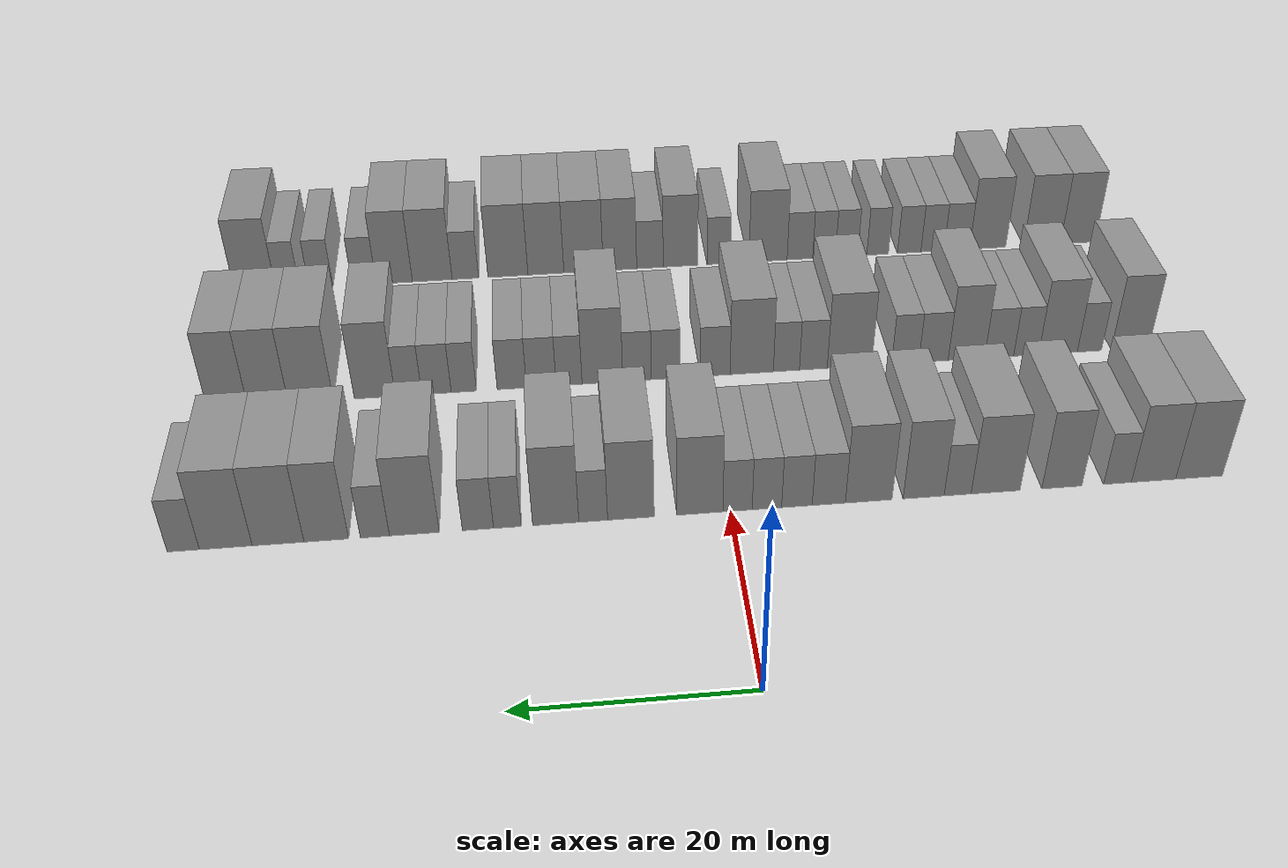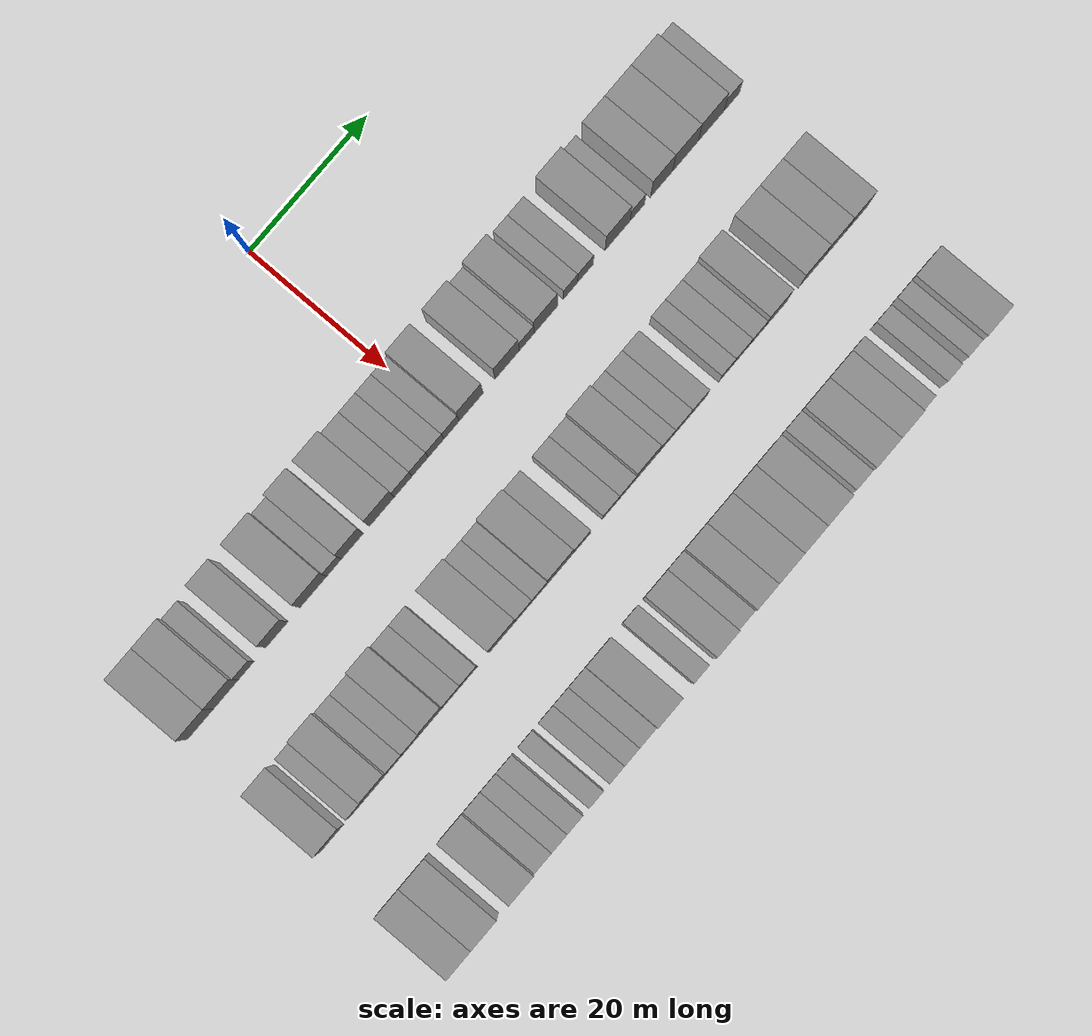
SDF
<sdf version="1.6">
 <world name="default">
  <model name="building_50">
   <static>1</static>
   <pose>25.0000 -42.7216 0 0.000000 0.000000 0.000000</pose>
   <link name="link">
    <pose>0 0 4.50 0 0 0</pose>
    <collision name="collision"><geometry><box><size>10.0000 4.3754 9.0000</size></box></geometry></collision>
    <visual name="visual">
     <cast_shadows>0</cast_shadows>
     <geometry><box><size>10.0000 4.3754 9.0000</size></box></geometry>
     <material>
      <script>
       <uri>model://grey_wall/materials/scripts</uri>
       <uri>model://grey_wall/materials/textures</uri>
       <name>vrc/grey_wall</name>
      </script>
     </material>
    </visual>
   </link>
  </model>
  <model name="building_51">
   <static>1</static>
   <pose>25.0000 -38.4709 0 0.000000 0.000000 0.000000</pose>
   <link name="link">
    <pose>0 0 4.50 0 0 0</pose>
    <collision name="collision"><geometry><box><size>10.0000 4.1260 9.0000</size></box></geometry></collision>
    <visual name="visual">
     <cast_shadows>0</cast_shadows>
     <geometry><box><size>10.0000 4.1260 9.0000</size></box></geometry>
     <material>
      <script>
       <uri>model://grey_wall/materials/scripts</uri>
       <uri>model://grey_wall/materials/textures</uri>
       <name>vrc/grey_wall</name>
      </script>
     </material>
    </visual>
   </link>
  </model>
  <model name="building_52">
   <static>1</static>
   <pose>25.0000 -35.1156 0 0.000000 0.000000 0.000000</pose>
   <link name="link">
    <pose>0 0 3.00 0 0 0</pose>
    <collision name="collision"><geometry><box><size>10.0000 2.5847 6.0000</size></box></geometry></collision>
    <visual name="visual">
     <cast_shadows>0</cast_shadows>
     <geometry><box><size>10.0000 2.5847 6.0000</size></box></geometry>
     <material>
      <script>
       <uri>model://grey_wall/materials/scripts</uri>
       <uri>model://grey_wall/materials/textures</uri>
       <name>vrc/grey_wall</name>
      </script>
     </material>
    </visual>
   </link>
  </model>
  <model name="building_53">
   <static>1</static>
   <pose>25.0000 -29.9718 0 0.000000 0.000000 0.000000</pose>
   <link name="link">
    <pose>0 0 4.50 0 0 0</pose>
    <collision name="collision"><geometry><box><size>10.0000 3.7028 9.0000</size></box></geometry></collision>
    <visual name="visual">
     <cast_shadows>0</cast_shadows>
     <geometry><box><size>10.0000 3.7028 9.0000</size></box></geometry>
     <material>
      <script>
       <uri>model://grey_wall/materials/scripts</uri>
       <uri>model://grey_wall/materials/textures</uri>
       <name>vrc/grey_wall</name>
      </script>
     </material>
    </visual>
   </link>
  </model>
  <model name="building_54">
   <static>1</static>
   <pose>25.0000 -23.8751 0 0.000000 0.000000 0.000000</pose>
   <link name="link">
    <pose>0 0 4.50 0 0 0</pose>
    <collision name="collision"><geometry><box><size>10.0000 4.4907 9.0000</size></box></geometry></collision>
    <visual name="visual">
     <cast_shadows>0</cast_shadows>
     <geometry><box><size>10.0000 4.4907 9.0000</size></box></geometry>
     <material>
      <script>
       <uri>model://grey_wall/materials/scripts</uri>
       <uri>model://grey_wall/materials/textures</uri>
       <name>vrc/grey_wall</name>
      </script>
     </material>
    </visual>
   </link>
  </model>
  <model name="building_55">
   <static>1</static>
   <pose>25.0000 -20.3982 0 0.000000 0.000000 0.000000</pose>
   <link name="link">
    <pose>0 0 3.00 0 0 0</pose>
    <collision name="collision"><geometry><box><size>10.0000 2.4630 6.0000</size></box></geometry></collision>
    <visual name="visual">
     <cast_shadows>0</cast_shadows>
     <geometry><box><size>10.0000 2.4630 6.0000</size></box></geometry>
     <material>
      <script>
       <uri>model://grey_wall/materials/scripts</uri>
       <uri>model://grey_wall/materials/textures</uri>
       <name>vrc/grey_wall</name>
      </script>
     </material>
    </visual>
   </link>
  </model>
  <model name="building_56">
   <static>1</static>
   <pose>25.0000 -17.3053 0 0.000000 0.000000 0.000000</pose>
   <link name="link">
    <pose>0 0 4.50 0 0 0</pose>
    <collision name="collision"><geometry><box><size>10.0000 3.7229 9.0000</size></box></geometry></collision>
    <visual name="visual">
     <cast_shadows>0</cast_shadows>
     <geometry><box><size>10.0000 3.7229 9.0000</size></box></geometry>
     <material>
      <script>
       <uri>model://grey_wall/materials/scripts</uri>
       <uri>model://grey_wall/materials/textures</uri>
       <name>vrc/grey_wall</name>
      </script>
     </material>
    </visual>
   </link>
  </model>
  <model name="building_57">
   <static>1</static>
   <pose>25.0000 -12.3346 0 0.000000 0.000000 0.000000</pose>
   <link name="link">
    <pose>0 0 4.50 0 0 0</pose>
    <collision name="collision"><geometry><box><size>10.0000 4.2184 9.0000</size></box></geometry></collision>
    <visual name="visual">
     <cast_shadows>0</cast_shadows>
     <geometry><box><size>10.0000 4.2184 9.0000</size></box></geometry>
     <material>
      <script>
       <uri>model://grey_wall/materials/scripts</uri>
       <uri>model://grey_wall/materials/textures</uri>
       <name>vrc/grey_wall</name>
      </script>
     </material>
    </visual>
   </link>
  </model>
  <model name="building_58">
   <static>1</static>
   <pose>25.0000 -8.7328 0 0.000000 0.000000 0.000000</pose>
   <link name="link">
    <pose>0 0 3.00 0 0 0</pose>
    <collision name="collision"><geometry><box><size>10.0000 2.9853 6.0000</size></box></geometry></collision>
    <visual name="visual">
     <cast_shadows>0</cast_shadows>
     <geometry><box><size>10.0000 2.9853 6.0000</size></box></geometry>
     <material>
      <script>
       <uri>model://grey_wall/materials/scripts</uri>
       <uri>model://grey_wall/materials/textures</uri>
       <name>vrc/grey_wall</name>
      </script>
     </material>
    </visual>
   </link>
  </model>
  <model name="building_59">
   <static>1</static>
   <pose>25.0000 -5.8702 0 0.000000 0.000000 0.000000</pose>
   <link name="link">
    <pose>0 0 3.00 0 0 0</pose>
    <collision name="collision"><geometry><box><size>10.0000 2.7400 6.0000</size></box></geometry></collision>
    <visual name="visual">
     <cast_shadows>0</cast_shadows>
     <geometry><box><size>10.0000 2.7400 6.0000</size></box></geometry>
     <material>
      <script>
       <uri>model://grey_wall/materials/scripts</uri>
       <uri>model://grey_wall/materials/textures</uri>
       <name>vrc/grey_wall</name>
      </script>
     </material>
    </visual>
   </link>
  </model>
  <model name="building_60">
   <static>1</static>
   <pose>25.0000 -3.1860 0 0.000000 0.000000 0.000000</pose>
   <link name="link">
    <pose>0 0 3.00 0 0 0</pose>
    <collision name="collision"><geometry><box><size>10.0000 2.6282 6.0000</size></box></geometry></collision>
    <visual name="visual">
     <cast_shadows>0</cast_shadows>
     <geometry><box><size>10.0000 2.6282 6.0000</size></box></geometry>
     <material>
      <script>
       <uri>model://grey_wall/materials/scripts</uri>
       <uri>model://grey_wall/materials/textures</uri>
       <name>vrc/grey_wall</name>
      </script>
     </material>
    </visual>
   </link>
  </model>
  <model name="building_61">
   <static>1</static>
   <pose>25.0000 -0.5667 0 0.000000 0.000000 0.000000</pose>
   <link name="link">
    <pose>0 0 3.00 0 0 0</pose>
    <collision name="collision"><geometry><box><size>10.0000 2.6105 6.0000</size></box></geometry></collision>
    <visual name="visual">
     <cast_shadows>0</cast_shadows>
     <geometry><box><size>10.0000 2.6105 6.0000</size></box></geometry>
     <material>
      <script>
       <uri>model://grey_wall/materials/scripts</uri>
       <uri>model://grey_wall/materials/textures</uri>
       <name>vrc/grey_wall</name>
      </script>
     </material>
    </visual>
   </link>
  </model>
  <model name="building_62">
   <static>1</static>
   <pose>25.0000 2.7764 0 0.000000 0.000000 0.000000</pose>
   <link name="link">
    <pose>0 0 4.50 0 0 0</pose>
    <collision name="collision"><geometry><box><size>10.0000 4.0758 9.0000</size></box></geometry></collision>
    <visual name="visual">
     <cast_shadows>0</cast_shadows>
     <geometry><box><size>10.0000 4.0758 9.0000</size></box></geometry>
     <material>
      <script>
       <uri>model://grey_wall/materials/scripts</uri>
       <uri>model://grey_wall/materials/textures</uri>
       <name>vrc/grey_wall</name>
      </script>
     </material>
    </visual>
   </link>
  </model>
  <model name="building_63">
   <static>1</static>
   <pose>25.0000 8.8655 0 0.000000 0.000000 0.000000</pose>
   <link name="link">
    <pose>0 0 4.50 0 0 0</pose>
    <collision name="collision"><geometry><box><size>10.0000 4.1023 9.0000</size></box></geometry></collision>
    <visual name="visual">
     <cast_shadows>0</cast_shadows>
     <geometry><box><size>10.0000 4.1023 9.0000</size></box></geometry>
     <material>
      <script>
       <uri>model://grey_wall/materials/scripts</uri>
       <uri>model://grey_wall/materials/textures</uri>
       <name>vrc/grey_wall</name>
      </script>
     </material>
    </visual>
   </link>
  </model>
  <model name="building_64">
   <static>1</static>
   <pose>25.0000 12.1791 0 0.000000 0.000000 0.000000</pose>
   <link name="link">
    <pose>0 0 3.00 0 0 0</pose>
    <collision name="collision"><geometry><box><size>10.0000 2.5248 6.0000</size></box></geometry></collision>
    <visual name="visual">
     <cast_shadows>0</cast_shadows>
     <geometry><box><size>10.0000 2.5248 6.0000</size></box></geometry>
     <material>
      <script>
       <uri>model://grey_wall/materials/scripts</uri>
       <uri>model://grey_wall/materials/textures</uri>
       <name>vrc/grey_wall</name>
      </script>
     </material>
    </visual>
   </link>
  </model>
  <model name="building_65">
   <static>1</static>
   <pose>25.0000 15.4568 0 0.000000 0.000000 0.000000</pose>
   <link name="link">
    <pose>0 0 4.50 0 0 0</pose>
    <collision name="collision"><geometry><box><size>10.0000 4.0306 9.0000</size></box></geometry></collision>
    <visual name="visual">
     <cast_shadows>0</cast_shadows>
     <geometry><box><size>10.0000 4.0306 9.0000</size></box></geometry>
     <material>
      <script>
       <uri>model://grey_wall/materials/scripts</uri>
       <uri>model://grey_wall/materials/textures</uri>
       <name>vrc/grey_wall</name>
      </script>
     </material>
    </visual>
   </link>
  </model>
  <model name="building_66">
   <static>1</static>
   <pose>25.0000 19.6749 0 0.000000 0.000000 0.000000</pose>
   <link name="link">
    <pose>0 0 3.00 0 0 0</pose>
    <collision name="collision"><geometry><box><size>10.0000 2.4056 6.0000</size></box></geometry></collision>
    <visual name="visual">
     <cast_shadows>0</cast_shadows>
     <geometry><box><size>10.0000 2.4056 6.0000</size></box></geometry>
     <material>
      <script>
       <uri>model://grey_wall/materials/scripts</uri>
       <uri>model://grey_wall/materials/textures</uri>
       <name>vrc/grey_wall</name>
      </script>
     </material>
    </visual>
   </link>
  </model>
  <model name="building_67">
   <static>1</static>
   <pose>25.0000 22.2227 0 0.000000 0.000000 0.000000</pose>
   <link name="link">
    <pose>0 0 3.00 0 0 0</pose>
    <collision name="collision"><geometry><box><size>10.0000 2.6901 6.0000</size></box></geometry></collision>
    <visual name="visual">
     <cast_shadows>0</cast_shadows>
     <geometry><box><size>10.0000 2.6901 6.0000</size></box></geometry>
     <material>
      <script>
       <uri>model://grey_wall/materials/scripts</uri>
       <uri>model://grey_wall/materials/textures</uri>
       <name>vrc/grey_wall</name>
      </script>
     </material>
    </visual>
   </link>
  </model>
  <model name="building_68">
   <static>1</static>
   <pose>25.0000 27.7084 0 0.000000 0.000000 0.000000</pose>
   <link name="link">
    <pose>0 0 4.50 0 0 0</pose>
    <collision name="collision"><geometry><box><size>10.0000 4.2813 9.0000</size></box></geometry></collision>
    <visual name="visual">
     <cast_shadows>0</cast_shadows>
     <geometry><box><size>10.0000 4.2813 9.0000</size></box></geometry>
     <material>
      <script>
       <uri>model://grey_wall/materials/scripts</uri>
       <uri>model://grey_wall/materials/textures</uri>
       <name>vrc/grey_wall</name>
      </script>
     </material>
    </visual>
   </link>
  </model>
  <model name="building_69">
   <static>1</static>
   <pose>25.0000 31.0957 0 0.000000 0.000000 0.000000</pose>
   <link name="link">
    <pose>0 0 3.00 0 0 0</pose>
    <collision name="collision"><geometry><box><size>10.0000 2.4934 6.0000</size></box></geometry></collision>
    <visual name="visual">
     <cast_shadows>0</cast_shadows>
     <geometry><box><size>10.0000 2.4934 6.0000</size></box></geometry>
     <material>
      <script>
       <uri>model://grey_wall/materials/scripts</uri>
       <uri>model://grey_wall/materials/textures</uri>
       <name>vrc/grey_wall</name>
      </script>
     </material>
    </visual>
   </link>
  </model>
  <model name="building_70">
   <static>1</static>
   <pose>25.0000 35.2474 0 0.000000 0.000000 0.000000</pose>
   <link name="link">
    <pose>0 0 4.50 0 0 0</pose>
    <collision name="collision"><geometry><box><size>10.0000 3.8100 9.0000</size></box></geometry></collision>
    <visual name="visual">
     <cast_shadows>0</cast_shadows>
     <geometry><box><size>10.0000 3.8100 9.0000</size></box></geometry>
     <material>
      <script>
       <uri>model://grey_wall/materials/scripts</uri>
       <uri>model://grey_wall/materials/textures</uri>
       <name>vrc/grey_wall</name>
      </script>
     </material>
    </visual>
   </link>
  </model>
  <model name="building_71">
   <static>1</static>
   <pose>25.0000 39.3459 0 0.000000 0.000000 0.000000</pose>
   <link name="link">
    <pose>0 0 4.50 0 0 0</pose>
    <collision name="collision"><geometry><box><size>10.0000 4.3869 9.0000</size></box></geometry></collision>
    <visual name="visual">
     <cast_shadows>0</cast_shadows>
     <geometry><box><size>10.0000 4.3869 9.0000</size></box></geometry>
     <material>
      <script>
       <uri>model://grey_wall/materials/scripts</uri>
       <uri>model://grey_wall/materials/textures</uri>
       <name>vrc/grey_wall</name>
      </script>
     </material>
    </visual>
   </link>
  </model>
  <model name="building_72">
   <static>1</static>
   <pose>25.0000 43.7689 0 0.000000 0.000000 0.000000</pose>
   <link name="link">
    <pose>0 0 4.50 0 0 0</pose>
    <collision name="collision"><geometry><box><size>10.0000 4.4592 9.0000</size></box></geometry></collision>
    <visual name="visual">
     <cast_shadows>0</cast_shadows>
     <geometry><box><size>10.0000 4.4592 9.0000</size></box></geometry>
     <material>
      <script>
       <uri>model://grey_wall/materials/scripts</uri>
       <uri>model://grey_wall/materials/textures</uri>
       <name>vrc/grey_wall</name>
      </script>
     </material>
    </visual>
   </link>
  </model>
  <model name="building_73">
   <static>1</static>
   <pose>25.0000 47.3515 0 0.000000 0.000000 0.000000</pose>
   <link name="link">
    <pose>0 0 3.00 0 0 0</pose>
    <collision name="collision"><geometry><box><size>10.0000 2.7061 6.0000</size></box></geometry></collision>
    <visual name="visual">
     <cast_shadows>0</cast_shadows>
     <geometry><box><size>10.0000 2.7061 6.0000</size></box></geometry>
     <material>
      <script>
       <uri>model://grey_wall/materials/scripts</uri>
       <uri>model://grey_wall/materials/textures</uri>
       <name>vrc/grey_wall</name>
      </script>
     </material>
    </visual>
   </link>
  </model>
  <model name="building_173">
   <static>1</static>
   <pose>44.0000 -42.8309 0 0.000000 0.000000 0.000000</pose>
   <link name="link">
    <pose>0 0 4.50 0 0 0</pose>
    <collision name="collision"><geometry><box><size>10.0000 3.9097 9.0000</size></box></geometry></collision>
    <visual name="visual">
     <cast_shadows>0</cast_shadows>
     <geometry><box><size>10.0000 3.9097 9.0000</size></box></geometry>
     <material>
      <script>
       <uri>model://grey_wall/materials/scripts</uri>
       <uri>model://grey_wall/materials/textures</uri>
       <name>vrc/grey_wall</name>
      </script>
     </material>
    </visual>
   </link>
  </model>
  <model name="building_174">
   <static>1</static>
   <pose>44.0000 -38.6258 0 0.000000 0.000000 0.000000</pose>
   <link name="link">
    <pose>0 0 3.00 0 0 0</pose>
    <collision name="collision"><geometry><box><size>10.0000 2.5004 6.0000</size></box></geometry></collision>
    <visual name="visual">
     <cast_shadows>0</cast_shadows>
     <geometry><box><size>10.0000 2.5004 6.0000</size></box></geometry>
     <material>
      <script>
       <uri>model://grey_wall/materials/scripts</uri>
       <uri>model://grey_wall/materials/textures</uri>
       <name>vrc/grey_wall</name>
      </script>
     </material>
    </visual>
   </link>
  </model>
  <model name="building_175">
   <static>1</static>
   <pose>44.0000 -35.3883 0 0.000000 0.000000 0.000000</pose>
   <link name="link">
    <pose>0 0 4.50 0 0 0</pose>
    <collision name="collision"><geometry><box><size>10.0000 3.9746 9.0000</size></box></geometry></collision>
    <visual name="visual">
     <cast_shadows>0</cast_shadows>
     <geometry><box><size>10.0000 3.9746 9.0000</size></box></geometry>
     <material>
      <script>
       <uri>model://grey_wall/materials/scripts</uri>
       <uri>model://grey_wall/materials/textures</uri>
       <name>vrc/grey_wall</name>
      </script>
     </material>
    </visual>
   </link>
  </model>
  <model name="building_176">
   <static>1</static>
   <pose>44.0000 -32.1208 0 0.000000 0.000000 0.000000</pose>
   <link name="link">
    <pose>0 0 3.00 0 0 0</pose>
    <collision name="collision"><geometry><box><size>10.0000 2.5604 6.0000</size></box></geometry></collision>
    <visual name="visual">
     <cast_shadows>0</cast_shadows>
     <geometry><box><size>10.0000 2.5604 6.0000</size></box></geometry>
     <material>
      <script>
       <uri>model://grey_wall/materials/scripts</uri>
       <uri>model://grey_wall/materials/textures</uri>
       <name>vrc/grey_wall</name>
      </script>
     </material>
    </visual>
   </link>
  </model>
  <model name="building_177">
   <static>1</static>
   <pose>44.0000 -29.3573 0 0.000000 0.000000 0.000000</pose>
   <link name="link">
    <pose>0 0 3.00 0 0 0</pose>
    <collision name="collision"><geometry><box><size>10.0000 2.9667 6.0000</size></box></geometry></collision>
    <visual name="visual">
     <cast_shadows>0</cast_shadows>
     <geometry><box><size>10.0000 2.9667 6.0000</size></box></geometry>
     <material>
      <script>
       <uri>model://grey_wall/materials/scripts</uri>
       <uri>model://grey_wall/materials/textures</uri>
       <name>vrc/grey_wall</name>
      </script>
     </material>
    </visual>
   </link>
  </model>
  <model name="building_178">
   <static>1</static>
   <pose>44.0000 -26.0195 0 0.000000 0.000000 0.000000</pose>
   <link name="link">
    <pose>0 0 4.50 0 0 0</pose>
    <collision name="collision"><geometry><box><size>10.0000 3.7088 9.0000</size></box></geometry></collision>
    <visual name="visual">
     <cast_shadows>0</cast_shadows>
     <geometry><box><size>10.0000 3.7088 9.0000</size></box></geometry>
     <material>
      <script>
       <uri>model://grey_wall/materials/scripts</uri>
       <uri>model://grey_wall/materials/textures</uri>
       <name>vrc/grey_wall</name>
      </script>
     </material>
    </visual>
   </link>
  </model>
  <model name="building_179">
   <static>1</static>
   <pose>44.0000 -22.6777 0 0.000000 0.000000 0.000000</pose>
   <link name="link">
    <pose>0 0 3.00 0 0 0</pose>
    <collision name="collision"><geometry><box><size>10.0000 2.9748 6.0000</size></box></geometry></collision>
    <visual name="visual">
     <cast_shadows>0</cast_shadows>
     <geometry><box><size>10.0000 2.9748 6.0000</size></box></geometry>
     <material>
      <script>
       <uri>model://grey_wall/materials/scripts</uri>
       <uri>model://grey_wall/materials/textures</uri>
       <name>vrc/grey_wall</name>
      </script>
     </material>
    </visual>
   </link>
  </model>
  <model name="building_180">
   <static>1</static>
   <pose>44.0000 -19.8198 0 0.000000 0.000000 0.000000</pose>
   <link name="link">
    <pose>0 0 3.00 0 0 0</pose>
    <collision name="collision"><geometry><box><size>10.0000 2.7412 6.0000</size></box></geometry></collision>
    <visual name="visual">
     <cast_shadows>0</cast_shadows>
     <geometry><box><size>10.0000 2.7412 6.0000</size></box></geometry>
     <material>
      <script>
       <uri>model://grey_wall/materials/scripts</uri>
       <uri>model://grey_wall/materials/textures</uri>
       <name>vrc/grey_wall</name>
      </script>
     </material>
    </visual>
   </link>
  </model>
  <model name="building_181">
   <static>1</static>
   <pose>44.0000 -14.2108 0 0.000000 0.000000 0.000000</pose>
   <link name="link">
    <pose>0 0 4.50 0 0 0</pose>
    <collision name="collision"><geometry><box><size>10.0000 4.4768 9.0000</size></box></geometry></collision>
    <visual name="visual">
     <cast_shadows>0</cast_shadows>
     <geometry><box><size>10.0000 4.4768 9.0000</size></box></geometry>
     <material>
      <script>
       <uri>model://grey_wall/materials/scripts</uri>
       <uri>model://grey_wall/materials/textures</uri>
       <name>vrc/grey_wall</name>
      </script>
     </material>
    </visual>
   </link>
  </model>
  <model name="building_182">
   <static>1</static>
   <pose>44.0000 -10.5837 0 0.000000 0.000000 0.000000</pose>
   <link name="link">
    <pose>0 0 3.00 0 0 0</pose>
    <collision name="collision"><geometry><box><size>10.0000 2.7774 6.0000</size></box></geometry></collision>
    <visual name="visual">
     <cast_shadows>0</cast_shadows>
     <geometry><box><size>10.0000 2.7774 6.0000</size></box></geometry>
     <material>
      <script>
       <uri>model://grey_wall/materials/scripts</uri>
       <uri>model://grey_wall/materials/textures</uri>
       <name>vrc/grey_wall</name>
      </script>
     </material>
    </visual>
   </link>
  </model>
  <model name="building_183">
   <static>1</static>
   <pose>44.0000 -7.8961 0 0.000000 0.000000 0.000000</pose>
   <link name="link">
    <pose>0 0 3.00 0 0 0</pose>
    <collision name="collision"><geometry><box><size>10.0000 2.5979 6.0000</size></box></geometry></collision>
    <visual name="visual">
     <cast_shadows>0</cast_shadows>
     <geometry><box><size>10.0000 2.5979 6.0000</size></box></geometry>
     <material>
      <script>
       <uri>model://grey_wall/materials/scripts</uri>
       <uri>model://grey_wall/materials/textures</uri>
       <name>vrc/grey_wall</name>
      </script>
     </material>
    </visual>
   </link>
  </model>
  <model name="building_184">
   <static>1</static>
   <pose>44.0000 -4.4448 0 0.000000 0.000000 0.000000</pose>
   <link name="link">
    <pose>0 0 4.50 0 0 0</pose>
    <collision name="collision"><geometry><box><size>10.0000 4.3047 9.0000</size></box></geometry></collision>
    <visual name="visual">
     <cast_shadows>0</cast_shadows>
     <geometry><box><size>10.0000 4.3047 9.0000</size></box></geometry>
     <material>
      <script>
       <uri>model://grey_wall/materials/scripts</uri>
       <uri>model://grey_wall/materials/textures</uri>
       <name>vrc/grey_wall</name>
      </script>
     </material>
    </visual>
   </link>
  </model>
  <model name="building_185">
   <static>1</static>
   <pose>44.0000 -0.8266 0 0.000000 0.000000 0.000000</pose>
   <link name="link">
    <pose>0 0 3.00 0 0 0</pose>
    <collision name="collision"><geometry><box><size>10.0000 2.9317 6.0000</size></box></geometry></collision>
    <visual name="visual">
     <cast_shadows>0</cast_shadows>
     <geometry><box><size>10.0000 2.9317 6.0000</size></box></geometry>
     <material>
      <script>
       <uri>model://grey_wall/materials/scripts</uri>
       <uri>model://grey_wall/materials/textures</uri>
       <name>vrc/grey_wall</name>
      </script>
     </material>
    </visual>
   </link>
  </model>
  <model name="building_186">
   <static>1</static>
   <pose>44.0000 4.0510 0 0.000000 0.000000 0.000000</pose>
   <link name="link">
    <pose>0 0 3.00 0 0 0</pose>
    <collision name="collision"><geometry><box><size>10.0000 2.8235 6.0000</size></box></geometry></collision>
    <visual name="visual">
     <cast_shadows>0</cast_shadows>
     <geometry><box><size>10.0000 2.8235 6.0000</size></box></geometry>
     <material>
      <script>
       <uri>model://grey_wall/materials/scripts</uri>
       <uri>model://grey_wall/materials/textures</uri>
       <name>vrc/grey_wall</name>
      </script>
     </material>
    </visual>
   </link>
  </model>
  <model name="building_187">
   <static>1</static>
   <pose>44.0000 6.8663 0 0.000000 0.000000 0.000000</pose>
   <link name="link">
    <pose>0 0 3.00 0 0 0</pose>
    <collision name="collision"><geometry><box><size>10.0000 2.8071 6.0000</size></box></geometry></collision>
    <visual name="visual">
     <cast_shadows>0</cast_shadows>
     <geometry><box><size>10.0000 2.8071 6.0000</size></box></geometry>
     <material>
      <script>
       <uri>model://grey_wall/materials/scripts</uri>
       <uri>model://grey_wall/materials/textures</uri>
       <name>vrc/grey_wall</name>
      </script>
     </material>
    </visual>
   </link>
  </model>
  <model name="building_188">
   <static>1</static>
   <pose>44.0000 10.2616 0 0.000000 0.000000 0.000000</pose>
   <link name="link">
    <pose>0 0 4.50 0 0 0</pose>
    <collision name="collision"><geometry><box><size>10.0000 3.9836 9.0000</size></box></geometry></collision>
    <visual name="visual">
     <cast_shadows>0</cast_shadows>
     <geometry><box><size>10.0000 3.9836 9.0000</size></box></geometry>
     <material>
      <script>
       <uri>model://grey_wall/materials/scripts</uri>
       <uri>model://grey_wall/materials/textures</uri>
       <name>vrc/grey_wall</name>
      </script>
     </material>
    </visual>
   </link>
  </model>
  <model name="building_189">
   <static>1</static>
   <pose>44.0000 13.5170 0 0.000000 0.000000 0.000000</pose>
   <link name="link">
    <pose>0 0 3.00 0 0 0</pose>
    <collision name="collision"><geometry><box><size>10.0000 2.5271 6.0000</size></box></geometry></collision>
    <visual name="visual">
     <cast_shadows>0</cast_shadows>
     <geometry><box><size>10.0000 2.5271 6.0000</size></box></geometry>
     <material>
      <script>
       <uri>model://grey_wall/materials/scripts</uri>
       <uri>model://grey_wall/materials/textures</uri>
       <name>vrc/grey_wall</name>
      </script>
     </material>
    </visual>
   </link>
  </model>
  <model name="building_190">
   <static>1</static>
   <pose>44.0000 16.2181 0 0.000000 0.000000 0.000000</pose>
   <link name="link">
    <pose>0 0 3.00 0 0 0</pose>
    <collision name="collision"><geometry><box><size>10.0000 2.8750 6.0000</size></box></geometry></collision>
    <visual name="visual">
     <cast_shadows>0</cast_shadows>
     <geometry><box><size>10.0000 2.8750 6.0000</size></box></geometry>
     <material>
      <script>
       <uri>model://grey_wall/materials/scripts</uri>
       <uri>model://grey_wall/materials/textures</uri>
       <name>vrc/grey_wall</name>
      </script>
     </material>
    </visual>
   </link>
  </model>
  <model name="building_191">
   <static>1</static>
   <pose>44.0000 19.0745 0 0.000000 0.000000 0.000000</pose>
   <link name="link">
    <pose>0 0 3.00 0 0 0</pose>
    <collision name="collision"><geometry><box><size>10.0000 2.8378 6.0000</size></box></geometry></collision>
    <visual name="visual">
     <cast_shadows>0</cast_shadows>
     <geometry><box><size>10.0000 2.8378 6.0000</size></box></geometry>
     <material>
      <script>
       <uri>model://grey_wall/materials/scripts</uri>
       <uri>model://grey_wall/materials/textures</uri>
       <name>vrc/grey_wall</name>
      </script>
     </material>
    </visual>
   </link>
  </model>
  <model name="building_192">
   <static>1</static>
   <pose>44.0000 23.7093 0 0.000000 0.000000 0.000000</pose>
   <link name="link">
    <pose>0 0 3.00 0 0 0</pose>
    <collision name="collision"><geometry><box><size>10.0000 2.4318 6.0000</size></box></geometry></collision>
    <visual name="visual">
     <cast_shadows>0</cast_shadows>
     <geometry><box><size>10.0000 2.4318 6.0000</size></box></geometry>
     <material>
      <script>
       <uri>model://grey_wall/materials/scripts</uri>
       <uri>model://grey_wall/materials/textures</uri>
       <name>vrc/grey_wall</name>
      </script>
     </material>
    </visual>
   </link>
  </model>
  <model name="building_193">
   <static>1</static>
   <pose>44.0000 26.3381 0 0.000000 0.000000 0.000000</pose>
   <link name="link">
    <pose>0 0 3.00 0 0 0</pose>
    <collision name="collision"><geometry><box><size>10.0000 2.8258 6.0000</size></box></geometry></collision>
    <visual name="visual">
     <cast_shadows>0</cast_shadows>
     <geometry><box><size>10.0000 2.8258 6.0000</size></box></geometry>
     <material>
      <script>
       <uri>model://grey_wall/materials/scripts</uri>
       <uri>model://grey_wall/materials/textures</uri>
       <name>vrc/grey_wall</name>
      </script>
     </material>
    </visual>
   </link>
  </model>
  <model name="building_194">
   <static>1</static>
   <pose>44.0000 29.0210 0 0.000000 0.000000 0.000000</pose>
   <link name="link">
    <pose>0 0 3.00 0 0 0</pose>
    <collision name="collision"><geometry><box><size>10.0000 2.5401 6.0000</size></box></geometry></collision>
    <visual name="visual">
     <cast_shadows>0</cast_shadows>
     <geometry><box><size>10.0000 2.5401 6.0000</size></box></geometry>
     <material>
      <script>
       <uri>model://grey_wall/materials/scripts</uri>
       <uri>model://grey_wall/materials/textures</uri>
       <name>vrc/grey_wall</name>
      </script>
     </material>
    </visual>
   </link>
  </model>
  <model name="building_195">
   <static>1</static>
   <pose>44.0000 32.2441 0 0.000000 0.000000 0.000000</pose>
   <link name="link">
    <pose>0 0 4.50 0 0 0</pose>
    <collision name="collision"><geometry><box><size>10.0000 3.9061 9.0000</size></box></geometry></collision>
    <visual name="visual">
     <cast_shadows>0</cast_shadows>
     <geometry><box><size>10.0000 3.9061 9.0000</size></box></geometry>
     <material>
      <script>
       <uri>model://grey_wall/materials/scripts</uri>
       <uri>model://grey_wall/materials/textures</uri>
       <name>vrc/grey_wall</name>
      </script>
     </material>
    </visual>
   </link>
  </model>
  <model name="building_196">
   <static>1</static>
   <pose>44.0000 38.3375 0 0.000000 0.000000 0.000000</pose>
   <link name="link">
    <pose>0 0 4.50 0 0 0</pose>
    <collision name="collision"><geometry><box><size>10.0000 4.2806 9.0000</size></box></geometry></collision>
    <visual name="visual">
     <cast_shadows>0</cast_shadows>
     <geometry><box><size>10.0000 4.2806 9.0000</size></box></geometry>
     <material>
      <script>
       <uri>model://grey_wall/materials/scripts</uri>
       <uri>model://grey_wall/materials/textures</uri>
       <name>vrc/grey_wall</name>
      </script>
     </material>
    </visual>
   </link>
  </model>
  <model name="building_197">
   <static>1</static>
   <pose>44.0000 42.4011 0 0.000000 0.000000 0.000000</pose>
   <link name="link">
    <pose>0 0 4.50 0 0 0</pose>
    <collision name="collision"><geometry><box><size>10.0000 3.8466 9.0000</size></box></geometry></collision>
    <visual name="visual">
     <cast_shadows>0</cast_shadows>
     <geometry><box><size>10.0000 3.8466 9.0000</size></box></geometry>
     <material>
      <script>
       <uri>model://grey_wall/materials/scripts</uri>
       <uri>model://grey_wall/materials/textures</uri>
       <name>vrc/grey_wall</name>
      </script>
     </material>
    </visual>
   </link>
  </model>
  <model name="building_198">
   <static>1</static>
   <pose>44.0000 46.2321 0 0.000000 0.000000 0.000000</pose>
   <link name="link">
    <pose>0 0 4.50 0 0 0</pose>
    <collision name="collision"><geometry><box><size>10.0000 3.8154 9.0000</size></box></geometry></collision>
    <visual name="visual">
     <cast_shadows>0</cast_shadows>
     <geometry><box><size>10.0000 3.8154 9.0000</size></box></geometry>
     <material>
      <script>
       <uri>model://grey_wall/materials/scripts</uri>
       <uri>model://grey_wall/materials/textures</uri>
       <name>vrc/grey_wall</name>
      </script>
     </material>
    </visual>
   </link>
  </model>
  <model name="building_301">
   <static>1</static>
   <pose>63.0000 -43.4408 0 0.000000 0.000000 0.000000</pose>
   <link name="link">
    <pose>0 0 4.50 0 0 0</pose>
    <collision name="collision"><geometry><box><size>10.0000 3.9547 9.0000</size></box></geometry></collision>
    <visual name="visual">
     <cast_shadows>0</cast_shadows>
     <geometry><box><size>10.0000 3.9547 9.0000</size></box></geometry>
     <material>
      <script>
       <uri>model://grey_wall/materials/scripts</uri>
       <uri>model://grey_wall/materials/textures</uri>
       <name>vrc/grey_wall</name>
      </script>
     </material>
    </visual>
   </link>
  </model>
  <model name="building_302">
   <static>1</static>
   <pose>63.0000 -39.3675 0 0.000000 0.000000 0.000000</pose>
   <link name="link">
    <pose>0 0 4.50 0 0 0</pose>
    <collision name="collision"><geometry><box><size>10.0000 4.1920 9.0000</size></box></geometry></collision>
    <visual name="visual">
     <cast_shadows>0</cast_shadows>
     <geometry><box><size>10.0000 4.1920 9.0000</size></box></geometry>
     <material>
      <script>
       <uri>model://grey_wall/materials/scripts</uri>
       <uri>model://grey_wall/materials/textures</uri>
       <name>vrc/grey_wall</name>
      </script>
     </material>
    </visual>
   </link>
  </model>
  <model name="building_303">
   <static>1</static>
   <pose>63.0000 -33.2353 0 0.000000 0.000000 0.000000</pose>
   <link name="link">
    <pose>0 0 4.50 0 0 0</pose>
    <collision name="collision"><geometry><box><size>10.0000 4.0724 9.0000</size></box></geometry></collision>
    <visual name="visual">
     <cast_shadows>0</cast_shadows>
     <geometry><box><size>10.0000 4.0724 9.0000</size></box></geometry>
     <material>
      <script>
       <uri>model://grey_wall/materials/scripts</uri>
       <uri>model://grey_wall/materials/textures</uri>
       <name>vrc/grey_wall</name>
      </script>
     </material>
    </visual>
   </link>
  </model>
  <model name="building_304">
   <static>1</static>
   <pose>63.0000 -29.7680 0 0.000000 0.000000 0.000000</pose>
   <link name="link">
    <pose>0 0 3.00 0 0 0</pose>
    <collision name="collision"><geometry><box><size>10.0000 2.8621 6.0000</size></box></geometry></collision>
    <visual name="visual">
     <cast_shadows>0</cast_shadows>
     <geometry><box><size>10.0000 2.8621 6.0000</size></box></geometry>
     <material>
      <script>
       <uri>model://grey_wall/materials/scripts</uri>
       <uri>model://grey_wall/materials/textures</uri>
       <name>vrc/grey_wall</name>
      </script>
     </material>
    </visual>
   </link>
  </model>
  <model name="building_305">
   <static>1</static>
   <pose>63.0000 -27.0472 0 0.000000 0.000000 0.000000</pose>
   <link name="link">
    <pose>0 0 3.00 0 0 0</pose>
    <collision name="collision"><geometry><box><size>10.0000 2.5796 6.0000</size></box></geometry></collision>
    <visual name="visual">
     <cast_shadows>0</cast_shadows>
     <geometry><box><size>10.0000 2.5796 6.0000</size></box></geometry>
     <material>
      <script>
       <uri>model://grey_wall/materials/scripts</uri>
       <uri>model://grey_wall/materials/textures</uri>
       <name>vrc/grey_wall</name>
      </script>
     </material>
    </visual>
   </link>
  </model>
  <model name="building_306">
   <static>1</static>
   <pose>63.0000 -24.4523 0 0.000000 0.000000 0.000000</pose>
   <link name="link">
    <pose>0 0 3.00 0 0 0</pose>
    <collision name="collision"><geometry><box><size>10.0000 2.6100 6.0000</size></box></geometry></collision>
    <visual name="visual">
     <cast_shadows>0</cast_shadows>
     <geometry><box><size>10.0000 2.6100 6.0000</size></box></geometry>
     <material>
      <script>
       <uri>model://grey_wall/materials/scripts</uri>
       <uri>model://grey_wall/materials/textures</uri>
       <name>vrc/grey_wall</name>
      </script>
     </material>
    </visual>
   </link>
  </model>
  <model name="building_307">
   <static>1</static>
   <pose>63.0000 -20.9467 0 0.000000 0.000000 0.000000</pose>
   <link name="link">
    <pose>0 0 3.00 0 0 0</pose>
    <collision name="collision"><geometry><box><size>10.0000 2.4012 6.0000</size></box></geometry></collision>
    <visual name="visual">
     <cast_shadows>0</cast_shadows>
     <geometry><box><size>10.0000 2.4012 6.0000</size></box></geometry>
     <material>
      <script>
       <uri>model://grey_wall/materials/scripts</uri>
       <uri>model://grey_wall/materials/textures</uri>
       <name>vrc/grey_wall</name>
      </script>
     </material>
    </visual>
   </link>
  </model>
  <model name="building_308">
   <static>1</static>
   <pose>63.0000 -17.5079 0 0.000000 0.000000 0.000000</pose>
   <link name="link">
    <pose>0 0 3.00 0 0 0</pose>
    <collision name="collision"><geometry><box><size>10.0000 2.4765 6.0000</size></box></geometry></collision>
    <visual name="visual">
     <cast_shadows>0</cast_shadows>
     <geometry><box><size>10.0000 2.4765 6.0000</size></box></geometry>
     <material>
      <script>
       <uri>model://grey_wall/materials/scripts</uri>
       <uri>model://grey_wall/materials/textures</uri>
       <name>vrc/grey_wall</name>
      </script>
     </material>
    </visual>
   </link>
  </model>
  <model name="building_309">
   <static>1</static>
   <pose>63.0000 -15.0133 0 0.000000 0.000000 0.000000</pose>
   <link name="link">
    <pose>0 0 3.00 0 0 0</pose>
    <collision name="collision"><geometry><box><size>10.0000 2.5126 6.0000</size></box></geometry></collision>
    <visual name="visual">
     <cast_shadows>0</cast_shadows>
     <geometry><box><size>10.0000 2.5126 6.0000</size></box></geometry>
     <material>
      <script>
       <uri>model://grey_wall/materials/scripts</uri>
       <uri>model://grey_wall/materials/textures</uri>
       <name>vrc/grey_wall</name>
      </script>
     </material>
    </visual>
   </link>
  </model>
  <model name="building_310">
   <static>1</static>
   <pose>63.0000 -12.3483 0 0.000000 0.000000 0.000000</pose>
   <link name="link">
    <pose>0 0 3.00 0 0 0</pose>
    <collision name="collision"><geometry><box><size>10.0000 2.8175 6.0000</size></box></geometry></collision>
    <visual name="visual">
     <cast_shadows>0</cast_shadows>
     <geometry><box><size>10.0000 2.8175 6.0000</size></box></geometry>
     <material>
      <script>
       <uri>model://grey_wall/materials/scripts</uri>
       <uri>model://grey_wall/materials/textures</uri>
       <name>vrc/grey_wall</name>
      </script>
     </material>
    </visual>
   </link>
  </model>
  <model name="building_311">
   <static>1</static>
   <pose>63.0000 -8.8454 0 0.000000 0.000000 0.000000</pose>
   <link name="link">
    <pose>0 0 4.50 0 0 0</pose>
    <collision name="collision"><geometry><box><size>10.0000 4.1883 9.0000</size></box></geometry></collision>
    <visual name="visual">
     <cast_shadows>0</cast_shadows>
     <geometry><box><size>10.0000 4.1883 9.0000</size></box></geometry>
     <material>
      <script>
       <uri>model://grey_wall/materials/scripts</uri>
       <uri>model://grey_wall/materials/textures</uri>
       <name>vrc/grey_wall</name>
      </script>
     </material>
    </visual>
   </link>
  </model>
  <model name="building_312">
   <static>1</static>
   <pose>63.0000 -3.4644 0 0.000000 0.000000 0.000000</pose>
   <link name="link">
    <pose>0 0 3.00 0 0 0</pose>
    <collision name="collision"><geometry><box><size>10.0000 2.5737 6.0000</size></box></geometry></collision>
    <visual name="visual">
     <cast_shadows>0</cast_shadows>
     <geometry><box><size>10.0000 2.5737 6.0000</size></box></geometry>
     <material>
      <script>
       <uri>model://grey_wall/materials/scripts</uri>
       <uri>model://grey_wall/materials/textures</uri>
       <name>vrc/grey_wall</name>
      </script>
     </material>
    </visual>
   </link>
  </model>
  <model name="building_313">
   <static>1</static>
   <pose>63.0000 0.7025 0 0.000000 0.000000 0.000000</pose>
   <link name="link">
    <pose>0 0 4.50 0 0 0</pose>
    <collision name="collision"><geometry><box><size>10.0000 3.7601 9.0000</size></box></geometry></collision>
    <visual name="visual">
     <cast_shadows>0</cast_shadows>
     <geometry><box><size>10.0000 3.7601 9.0000</size></box></geometry>
     <material>
      <script>
       <uri>model://grey_wall/materials/scripts</uri>
       <uri>model://grey_wall/materials/textures</uri>
       <name>vrc/grey_wall</name>
      </script>
     </material>
    </visual>
   </link>
  </model>
  <model name="building_314">
   <static>1</static>
   <pose>63.0000 4.0176 0 0.000000 0.000000 0.000000</pose>
   <link name="link">
    <pose>0 0 3.00 0 0 0</pose>
    <collision name="collision"><geometry><box><size>10.0000 2.8701 6.0000</size></box></geometry></collision>
    <visual name="visual">
     <cast_shadows>0</cast_shadows>
     <geometry><box><size>10.0000 2.8701 6.0000</size></box></geometry>
     <material>
      <script>
       <uri>model://grey_wall/materials/scripts</uri>
       <uri>model://grey_wall/materials/textures</uri>
       <name>vrc/grey_wall</name>
      </script>
     </material>
    </visual>
   </link>
  </model>
  <model name="building_315">
   <static>1</static>
   <pose>63.0000 7.2606 0 0.000000 0.000000 0.000000</pose>
   <link name="link">
    <pose>0 0 4.50 0 0 0</pose>
    <collision name="collision"><geometry><box><size>10.0000 3.6160 9.0000</size></box></geometry></collision>
    <visual name="visual">
     <cast_shadows>0</cast_shadows>
     <geometry><box><size>10.0000 3.6160 9.0000</size></box></geometry>
     <material>
      <script>
       <uri>model://grey_wall/materials/scripts</uri>
       <uri>model://grey_wall/materials/textures</uri>
       <name>vrc/grey_wall</name>
      </script>
     </material>
    </visual>
   </link>
  </model>
  <model name="building_316">
   <static>1</static>
   <pose>63.0000 11.1840 0 0.000000 0.000000 0.000000</pose>
   <link name="link">
    <pose>0 0 4.50 0 0 0</pose>
    <collision name="collision"><geometry><box><size>10.0000 4.2306 9.0000</size></box></geometry></collision>
    <visual name="visual">
     <cast_shadows>0</cast_shadows>
     <geometry><box><size>10.0000 4.2306 9.0000</size></box></geometry>
     <material>
      <script>
       <uri>model://grey_wall/materials/scripts</uri>
       <uri>model://grey_wall/materials/textures</uri>
       <name>vrc/grey_wall</name>
      </script>
     </material>
    </visual>
   </link>
  </model>
  <model name="building_317">
   <static>1</static>
   <pose>63.0000 15.2242 0 0.000000 0.000000 0.000000</pose>
   <link name="link">
    <pose>0 0 4.50 0 0 0</pose>
    <collision name="collision"><geometry><box><size>10.0000 3.8499 9.0000</size></box></geometry></collision>
    <visual name="visual">
     <cast_shadows>0</cast_shadows>
     <geometry><box><size>10.0000 3.8499 9.0000</size></box></geometry>
     <material>
      <script>
       <uri>model://grey_wall/materials/scripts</uri>
       <uri>model://grey_wall/materials/textures</uri>
       <name>vrc/grey_wall</name>
      </script>
     </material>
    </visual>
   </link>
  </model>
  <model name="building_318">
   <static>1</static>
   <pose>63.0000 19.2848 0 0.000000 0.000000 0.000000</pose>
   <link name="link">
    <pose>0 0 4.50 0 0 0</pose>
    <collision name="collision"><geometry><box><size>10.0000 4.2713 9.0000</size></box></geometry></collision>
    <visual name="visual">
     <cast_shadows>0</cast_shadows>
     <geometry><box><size>10.0000 4.2713 9.0000</size></box></geometry>
     <material>
      <script>
       <uri>model://grey_wall/materials/scripts</uri>
       <uri>model://grey_wall/materials/textures</uri>
       <name>vrc/grey_wall</name>
      </script>
     </material>
    </visual>
   </link>
  </model>
  <model name="building_319">
   <static>1</static>
   <pose>63.0000 23.8218 0 0.000000 0.000000 0.000000</pose>
   <link name="link">
    <pose>0 0 3.00 0 0 0</pose>
    <collision name="collision"><geometry><box><size>10.0000 2.8026 6.0000</size></box></geometry></collision>
    <visual name="visual">
     <cast_shadows>0</cast_shadows>
     <geometry><box><size>10.0000 2.8026 6.0000</size></box></geometry>
     <material>
      <script>
       <uri>model://grey_wall/materials/scripts</uri>
       <uri>model://grey_wall/materials/textures</uri>
       <name>vrc/grey_wall</name>
      </script>
     </material>
    </visual>
   </link>
  </model>
  <model name="building_320">
   <static>1</static>
   <pose>63.0000 27.3267 0 0.000000 0.000000 0.000000</pose>
   <link name="link">
    <pose>0 0 4.50 0 0 0</pose>
    <collision name="collision"><geometry><box><size>10.0000 4.2073 9.0000</size></box></geometry></collision>
    <visual name="visual">
     <cast_shadows>0</cast_shadows>
     <geometry><box><size>10.0000 4.2073 9.0000</size></box></geometry>
     <material>
      <script>
       <uri>model://grey_wall/materials/scripts</uri>
       <uri>model://grey_wall/materials/textures</uri>
       <name>vrc/grey_wall</name>
      </script>
     </material>
    </visual>
   </link>
  </model>
  <model name="building_321">
   <static>1</static>
   <pose>63.0000 31.3395 0 0.000000 0.000000 0.000000</pose>
   <link name="link">
    <pose>0 0 4.50 0 0 0</pose>
    <collision name="collision"><geometry><box><size>10.0000 3.8182 9.0000</size></box></geometry></collision>
    <visual name="visual">
     <cast_shadows>0</cast_shadows>
     <geometry><box><size>10.0000 3.8182 9.0000</size></box></geometry>
     <material>
      <script>
       <uri>model://grey_wall/materials/scripts</uri>
       <uri>model://grey_wall/materials/textures</uri>
       <name>vrc/grey_wall</name>
      </script>
     </material>
    </visual>
   </link>
  </model>
  <model name="building_322">
   <static>1</static>
   <pose>63.0000 34.5202 0 0.000000 0.000000 0.000000</pose>
   <link name="link">
    <pose>0 0 3.00 0 0 0</pose>
    <collision name="collision"><geometry><box><size>10.0000 2.5432 6.0000</size></box></geometry></collision>
    <visual name="visual">
     <cast_shadows>0</cast_shadows>
     <geometry><box><size>10.0000 2.5432 6.0000</size></box></geometry>
     <material>
      <script>
       <uri>model://grey_wall/materials/scripts</uri>
       <uri>model://grey_wall/materials/textures</uri>
       <name>vrc/grey_wall</name>
      </script>
     </material>
    </visual>
   </link>
  </model>
  <model name="building_323">
   <static>1</static>
   <pose>63.0000 39.0403 0 0.000000 0.000000 0.000000</pose>
   <link name="link">
    <pose>0 0 3.00 0 0 0</pose>
    <collision name="collision"><geometry><box><size>10.0000 2.4970 6.0000</size></box></geometry></collision>
    <visual name="visual">
     <cast_shadows>0</cast_shadows>
     <geometry><box><size>10.0000 2.4970 6.0000</size></box></geometry>
     <material>
      <script>
       <uri>model://grey_wall/materials/scripts</uri>
       <uri>model://grey_wall/materials/textures</uri>
       <name>vrc/grey_wall</name>
      </script>
     </material>
    </visual>
   </link>
  </model>
  <model name="building_324">
   <static>1</static>
   <pose>63.0000 42.5243 0 0.000000 0.000000 0.000000</pose>
   <link name="link">
    <pose>0 0 3.00 0 0 0</pose>
    <collision name="collision"><geometry><box><size>10.0000 2.4710 6.0000</size></box></geometry></collision>
    <visual name="visual">
     <cast_shadows>0</cast_shadows>
     <geometry><box><size>10.0000 2.4710 6.0000</size></box></geometry>
     <material>
      <script>
       <uri>model://grey_wall/materials/scripts</uri>
       <uri>model://grey_wall/materials/textures</uri>
       <name>vrc/grey_wall</name>
      </script>
     </material>
    </visual>
   </link>
  </model>
  <model name="building_325">
   <static>1</static>
   <pose>63.0000 45.9037 0 0.000000 0.000000 0.000000</pose>
   <link name="link">
    <pose>0 0 4.50 0 0 0</pose>
    <collision name="collision"><geometry><box><size>10.0000 4.2879 9.0000</size></box></geometry></collision>
    <visual name="visual">
     <cast_shadows>0</cast_shadows>
     <geometry><box><size>10.0000 4.2879 9.0000</size></box></geometry>
     <material>
      <script>
       <uri>model://grey_wall/materials/scripts</uri>
       <uri>model://grey_wall/materials/textures</uri>
       <name>vrc/grey_wall</name>
      </script>
     </material>
    </visual>
   </link>
  </model>
 </world>
</sdf>
